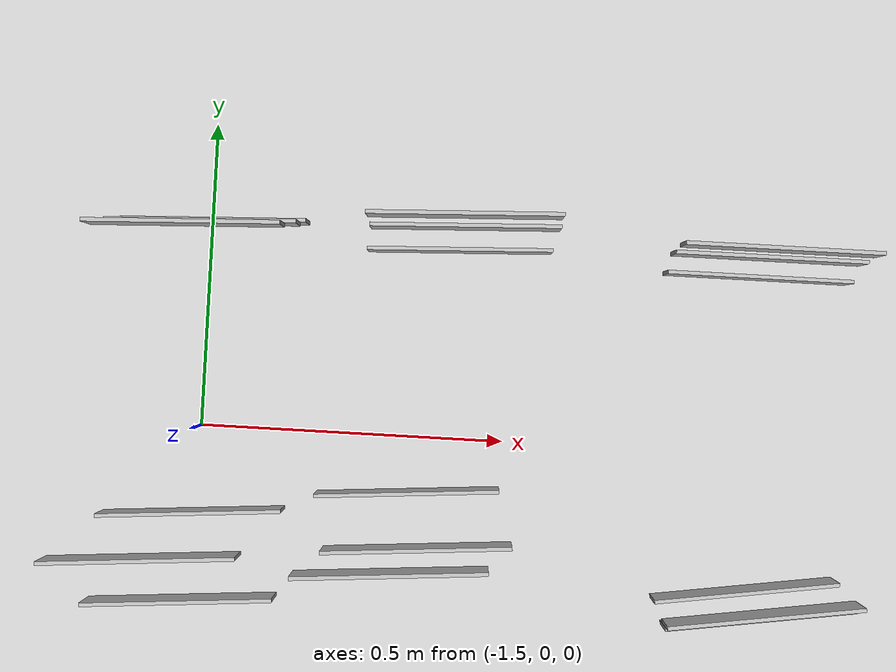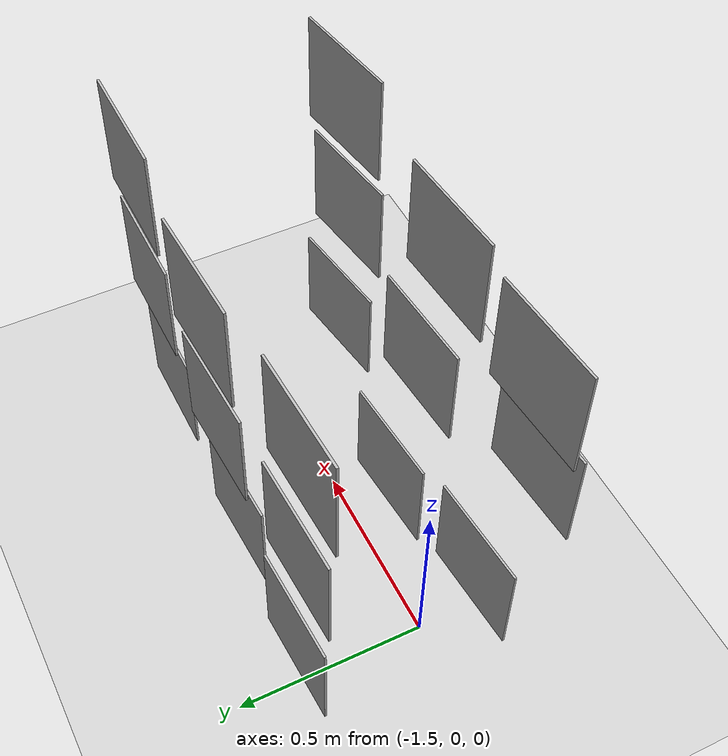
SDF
<sdf version="1.6">
 <world name="default">
  <model name="ground_plane">
   <static>1</static>
   <link name="link">
    <collision name="collision">
     <geometry><plane><normal>0 0 1</normal><size>100 100</size></plane></geometry>
     <surface><friction><ode><mu>100</mu><mu2>50</mu2></ode></friction></surface>
    </collision>
    <visual name="visual">
     <cast_shadows>0</cast_shadows>
     <geometry><plane><normal>0 0 1</normal><size>100 100</size></plane></geometry>
     <material>
      <script><uri>file://media/materials/scripts/gazebo.material</uri><name>Gazebo/Grey</name></script>
     </material>
    </visual>
   </link>
  </model>
  <model name="Apple">
   <static>1</static>
   <link name="link">
    <visual name="visual">
     <geometry><mesh><uri>model://apple/meshes/Apple.dae</uri><scale>0.6 0.6 0.6</scale></mesh></geometry>
    </visual>
   </link>
   <pose>-1.54747 -0.193447 0.820792 0 0 -1.49521</pose>
  </model>
  <model name="Apple_clone">
   <static>1</static>
   <link name="link">
    <visual name="visual">
     <geometry><mesh><uri>model://apple/meshes/Apple.dae</uri><scale>0.6 0.6 0.6</scale></mesh></geometry>
    </visual>
   </link>
   <pose>-1.16613 -0.195203 0.823259 0 0 -1.49521</pose>
  </model>
  <model name="Apple_clone_1">
   <static>1</static>
   <link name="link">
    <visual name="visual">
     <geometry><mesh><uri>model://apple/meshes/Apple.dae</uri><scale>0.6 0.6 0.6</scale></mesh></geometry>
    </visual>
   </link>
   <pose>-1.12912 -0.166771 0.438314 0 0 -1.49521</pose>
  </model>
  <model name="Apple_clone_1_clone">
   <static>1</static>
   <link name="link">
    <visual name="visual">
     <geometry><mesh><uri>model://apple/meshes/Apple.dae</uri><scale>0.6 0.6 0.6</scale></mesh></geometry>
    </visual>
   </link>
   <pose>-1.49897 -0.267827 0.438314 0 0 -1.49521</pose>
  </model>
  <model name="Apple_clone_1_clone_0">
   <static>1</static>
   <link name="link">
    <visual name="visual">
     <geometry><mesh><uri>model://apple/meshes/Apple.dae</uri><scale>0.6 0.6 0.6</scale></mesh></geometry>
    </visual>
   </link>
   <pose>-1.15157 -0.087648 0.062937 0 0 -1.49521</pose>
  </model>
  <model name="Apple_clone_1_clone_0_clone">
   <static>1</static>
   <link name="link">
    <visual name="visual">
     <geometry><mesh><uri>model://apple/meshes/Apple.dae</uri><scale>0.6 0.6 0.6</scale></mesh></geometry>
    </visual>
   </link>
   <pose>-1.50223 -0.138566 0.062937 0 0 -1.49521</pose>
  </model>
  <model name="Banana">
   <static>1</static>
   <link name="link">
    <visual name="visual">
     <geometry><mesh><uri>model://banana/meshes/Banana.dae</uri><scale>0.6 0.6 0.6</scale></mesh></geometry>
    </visual>
   </link>
   <pose>-0.586518 -0.245355 0.443564 0.000533 -7.9e-05 -1.42379</pose>
  </model>
  <model name="Banana_clone_0">
   <static>1</static>
   <link name="link">
    <visual name="visual">
     <geometry><mesh><uri>model://banana/meshes/Banana.dae</uri><scale>0.6 0.6 0.6</scale></mesh></geometry>
    </visual>
   </link>
   <pose>-0.59368 -0.217817 0.065225 0.000533 -7.9e-05 -1.42379</pose>
  </model>
  <model name="Banana_clone_1_clone">
   <static>1</static>
   <link name="link">
    <visual name="visual">
     <geometry><mesh><uri>model://banana/meshes/Banana.dae</uri><scale>0.6 0.6 0.6</scale></mesh></geometry>
    </visual>
   </link>
   <pose>-0.595385 -0.228847 0.808363 0.000533 -7.9e-05 -1.42379</pose>
  </model>
  <model name="Chicken_clone">
   <static>1</static>
   <link name="link">
    <visual name="visual">
     <geometry><mesh><uri>model://chicken/meshes/Chicken.dae</uri><scale>0.6 0.6 0.6</scale></mesh></geometry>
    </visual>
   </link>
   <pose>-0.599374 0.293417 0.060375 0 0 -1.57126</pose>
  </model>
  <model name="Chicken_clone_0">
   <static>1</static>
   <link name="link">
    <visual name="visual">
     <geometry><mesh><uri>model://chicken/meshes/Chicken.dae</uri><scale>0.6 0.6 0.6</scale></mesh></geometry>
    </visual>
   </link>
   <pose>-0.599957 0.320529 0.444777 0 0 -1.57126</pose>
  </model>
  <model name="Chicken_clone_0_clone_clone">
   <static>1</static>
   <link name="link">
    <visual name="visual">
     <geometry><mesh><uri>model://chicken/meshes/Chicken.dae</uri><scale>0.6 0.6 0.6</scale></mesh></geometry>
    </visual>
   </link>
   <pose>-0.597261 0.329431 0.809371 0 0 -1.57126</pose>
  </model>
  <model name="Cucumber">
   <static>1</static>
   <link name="link">
    <visual name="visual">
     <geometry><mesh><uri>model://cucumber/meshes/Cucumber.dae</uri><scale>0.6 0.6 0.6</scale></mesh></geometry>
    </visual>
   </link>
   <pose>-1.07927 0.343731 0.441341 0 0 -1.53067</pose>
  </model>
  <model name="Cucumber_clone">
   <static>1</static>
   <link name="link">
    <visual name="visual">
     <geometry><mesh><uri>model://cucumber/meshes/Cucumber.dae</uri><scale>0.6 0.6 0.6</scale></mesh></geometry>
    </visual>
   </link>
   <pose>-1.48706 0.338272 0.060705 0 0 -1.53067</pose>
  </model>
  <model name="Cucumber_clone_0">
   <static>1</static>
   <link name="link">
    <visual name="visual">
     <geometry><mesh><uri>model://cucumber/meshes/Cucumber.dae</uri><scale>0.6 0.6 0.6</scale></mesh></geometry>
    </visual>
   </link>
   <pose>-1.08631 0.311566 0.060705 0 0 -1.53067</pose>
  </model>
  <model name="Cucumber_clone_1">
   <static>1</static>
   <link name="link">
    <visual name="visual">
     <geometry><mesh><uri>model://cucumber/meshes/Cucumber.dae</uri><scale>0.6 0.6 0.6</scale></mesh></geometry>
    </visual>
   </link>
   <pose>-1.49311 0.329431 0.441341 0 0 -1.53067</pose>
  </model>
  <model name="Cucumber_clone_2">
   <static>1</static>
   <link name="link">
    <visual name="visual">
     <geometry><mesh><uri>model://cucumber/meshes/Cucumber.dae</uri><scale>0.6 0.6 0.6</scale></mesh></geometry>
    </visual>
   </link>
   <pose>-1.08102 0.355741 0.806847 0 0 -1.53067</pose>
  </model>
  <model name="Cucumber_clone_2_clone">
   <static>1</static>
   <link name="link">
    <visual name="visual">
     <geometry><mesh><uri>model://cucumber/meshes/Cucumber.dae</uri><scale>0.6 0.6 0.6</scale></mesh></geometry>
    </visual>
   </link>
   <pose>-1.50791 0.320529 0.806847 0 0 -1.53067</pose>
  </model>
 </world>
</sdf>
